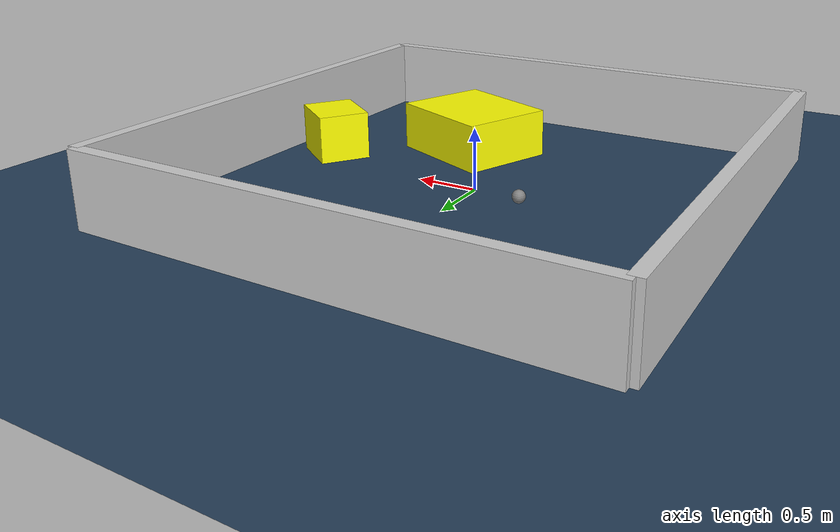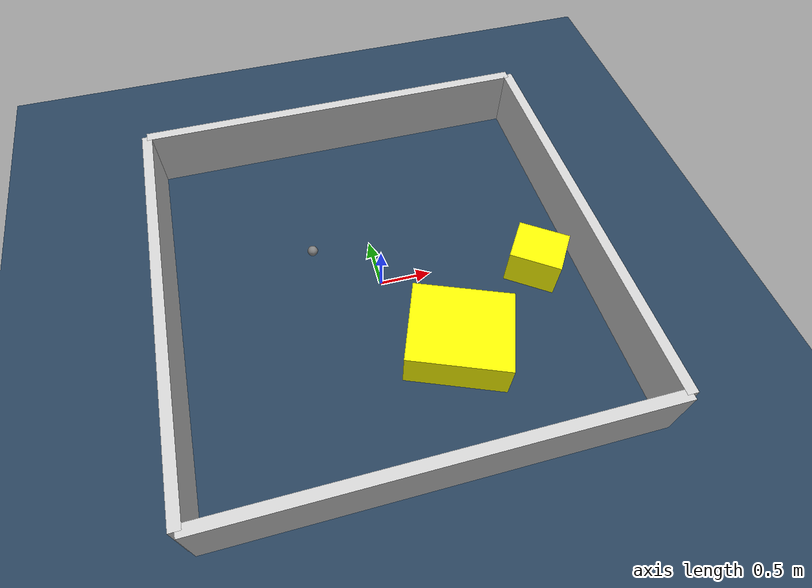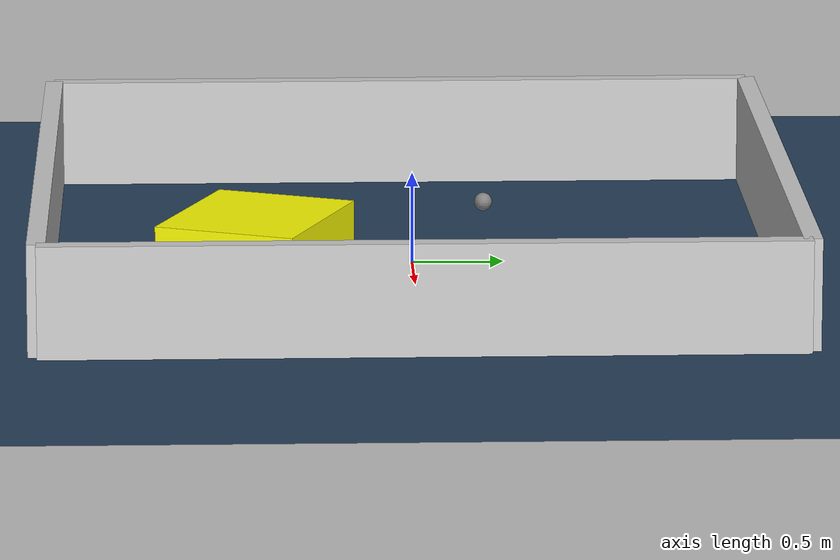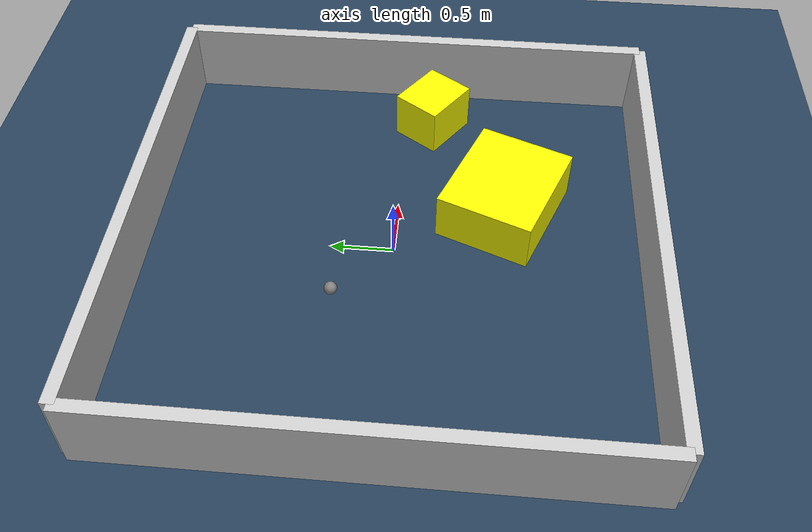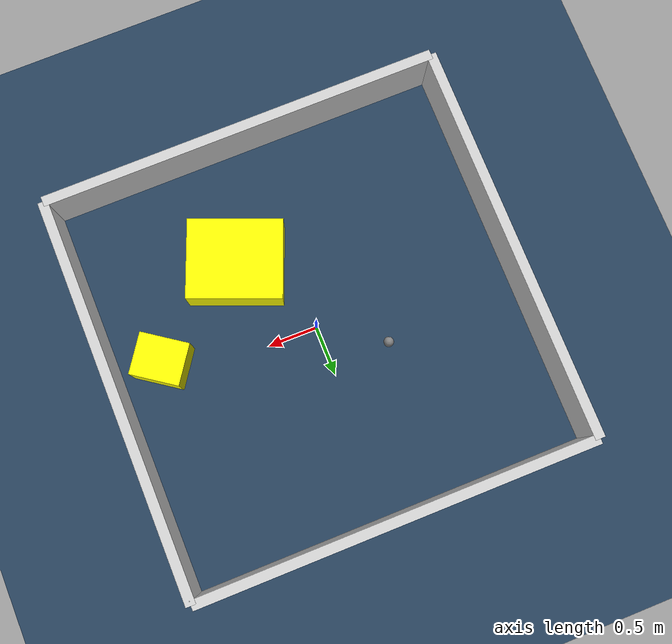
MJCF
<?xml version="1.0" ?>
<mujoco model="generated_environment">
  <option timestep="0.01" integrator="RK4" cone="elliptic"/>
  <default>
    <geom density="1"/>
  </default>
  <asset>
    <texture builtin="gradient" height="3072" rgb1="0.3 0.5 0.7" rgb2="0 0 0" type="skybox" width="512"/>
    <texture builtin="checker" height="300" mark="edge" markrgb="0.8 0.8 0.8" name="groundplane" rgb1="0.2 0.3 0.4" rgb2="0.1 0.2 0.3" type="2d" width="300"/>
    <material name="groundplane" reflectance="0.2" texrepeat="5 5" texture="groundplane" texuniform="true"/>
    <material name="robot" rgba="0.0 1.0 0.0 1"/>
  </asset>
  <worldbody>
    <light dir="0 0 -1" directional="true" pos="0 0 1.5"/>
    <geom condim="4" friction="1.0 0.005 0.001" material="groundplane" name="floor" size="0 0 0.05" type="plane"/>
    <body name="walls">
      <geom name="wall_1" condim="4" pos="-2.0 0.0 0.3" rgba="0.800000011920929 0.800000011920929 0.800000011920929 1.0" size="0.05 2.0 0.3" type="box"/>
      <geom name="wall_2" condim="4" pos="2.0 0.0 0.3" rgba="0.800000011920929 0.800000011920929 0.800000011920929 1.0" size="0.05 2.0 0.3" type="box"/>
      <geom name="wall_3" condim="4" pos="0.0 -2.0 0.3" rgba="0.800000011920929 0.800000011920929 0.800000011920929 1.0" size="2.0 0.05 0.3" type="box"/>
      <geom name="wall_4" condim="4" pos="0.0 2.0 0.3" rgba="0.800000011920929 0.800000011920929 0.800000011920929 1.0" size="2.0 0.05 0.3" type="box"/>
    </body>
    <body name="robot">
      <joint name="joint_x" type="slide" pos="0 0 0" axis="1 0 0"/>
      <joint name="joint_y" type="slide" pos="0 0 0" axis="0 1 0"/>
      <geom name="robot" type="sphere" pos="-0.5894959093238332 0.41558767199796565 0.2" size="0.05" mass="5." friction="1.0 0.005 0.0001" condim="4"/>
      <site name="sensor_ball"/>
    </body>
    <body name="obstacle_1_movable">
      <geom name="obstacle_1_movable" condim="4" pos="0.5009268049570181 -0.8618887873371571 0.2" euler="0 0 68.12856744726365" friction="1.0 0.005 0.001" rgba="1 1 0 1" size="0.39276760738901173 0.4671609379055995 0.2" type="box" mass="0.1"/>
      <joint type="free"/>
    </body>
    <body name="obstacle_2_movable">
      <geom name="obstacle_2_movable" condim="4" pos="1.5116422261234668 -0.2203689088252383 0.2" euler="0 0 325.0308289194498" friction="1.0 0.005 0.001" rgba="1 1 0 1" size="0.24626977132292366 0.20960178174709676 0.2" type="box" mass="0.1"/>
      <joint type="free"/>
    </body>
  </worldbody>
  <actuator>
    <motor name="actuator_x" joint="joint_x" gear="1" ctrlrange="-1 1"/>
    <motor name="actuator_y" joint="joint_y" gear="1" ctrlrange="-1 1"/>
  </actuator>
</mujoco>
